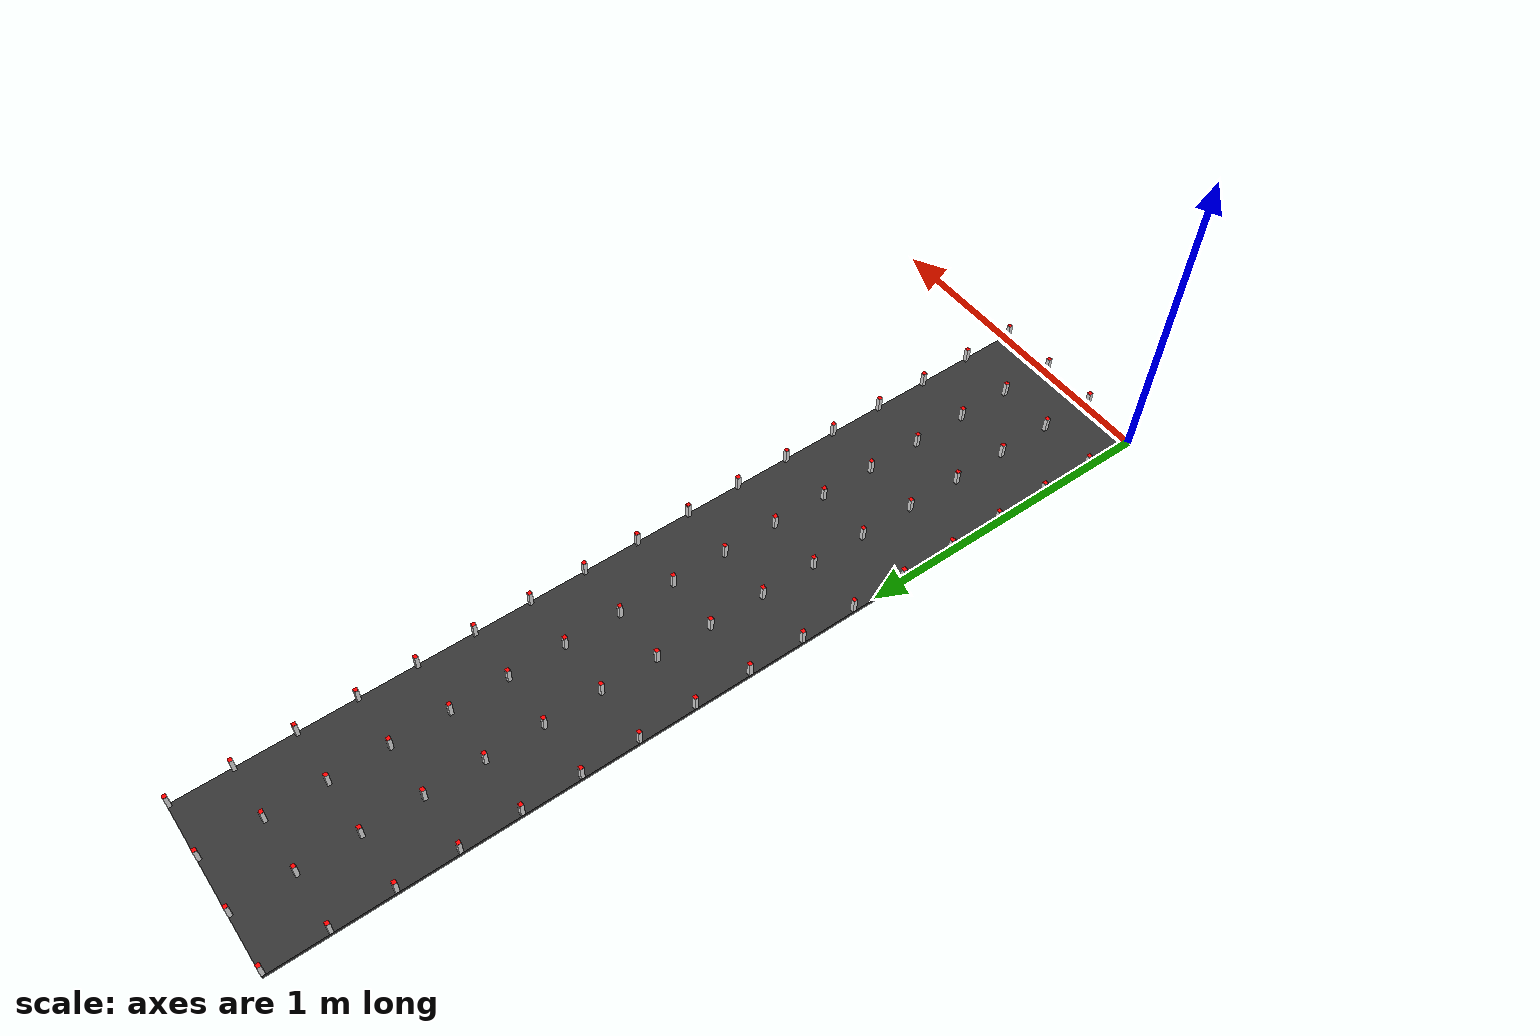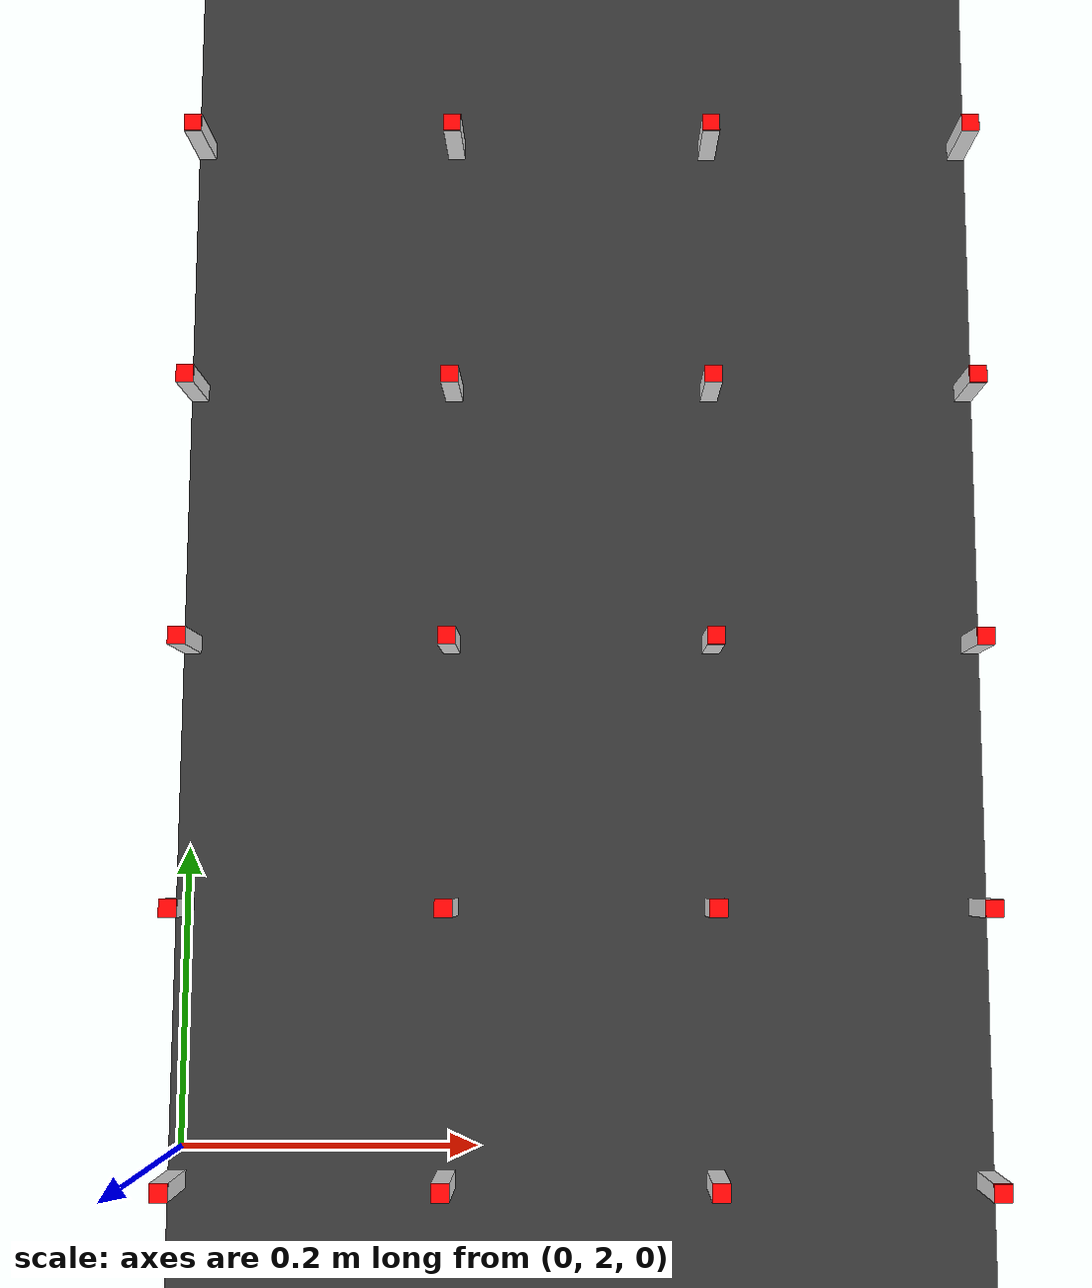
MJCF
<mujoco model="maze">
    <worldbody>
        <!--ベース板-->
        <body name="base_plate" pos="0.27 1.44 0.006">
        <geom type="box" mass="0.1" size="0.276 1.446 0.006" rgba="0.2 0.2 0.2 1" friction="0.0 0.0 0.0"/>
        </body>

        <!-- Column 1-->
        <body pos="0.0 0.0 0.037">
            <body pos="0 0 -0.0005">
                <geom type="box" mass="0.01" size="0.006 0.006 0.0245" rgba="1 1 1 1"/>
            </body>
            <!--柱上赤蓋-->
            <body pos="0 0 0.0245">
                <geom type="box" mass="0.01" size="0.006 0.006 0.0005" rgba="1 0 0 1"/>
            </body>
        </body>

        <!-- Column 2-->
        <body pos="0.18 0.0 0.037">
            <body pos="0 0 -0.0005">
                <geom type="box" mass="0.01" size="0.006 0.006 0.0245" rgba="1 1 1 1"/>
            </body>
            <!--柱上赤蓋-->
            <body pos="0 0 0.0245">
                <geom type="box" mass="0.01" size="0.006 0.006 0.0005" rgba="1 0 0 1"/>
            </body>
        </body>

        <!-- Column 3-->
        <body pos="0.36 0.0 0.037">
            <body pos="0 0 -0.0005">
                <geom type="box" mass="0.01" size="0.006 0.006 0.0245" rgba="1 1 1 1"/>
            </body>
            <!--柱上赤蓋-->
            <body pos="0 0 0.0245">
                <geom type="box" mass="0.01" size="0.006 0.006 0.0005" rgba="1 0 0 1"/>
            </body>
        </body>

        <!-- Column 4-->
        <body pos="0.54 0.0 0.037">
            <body pos="0 0 -0.0005">
                <geom type="box" mass="0.01" size="0.006 0.006 0.0245" rgba="1 1 1 1"/>
            </body>
            <!--柱上赤蓋-->
            <body pos="0 0 0.0245">
                <geom type="box" mass="0.01" size="0.006 0.006 0.0005" rgba="1 0 0 1"/>
            </body>
        </body>

        <!-- Column 5-->
        <body pos="0.0 0.18 0.037">
            <body pos="0 0 -0.0005">
                <geom type="box" mass="0.01" size="0.006 0.006 0.0245" rgba="1 1 1 1"/>
            </body>
            <!--柱上赤蓋-->
            <body pos="0 0 0.0245">
                <geom type="box" mass="0.01" size="0.006 0.006 0.0005" rgba="1 0 0 1"/>
            </body>
        </body>

        <!-- Column 6-->
        <body pos="0.18 0.18 0.037">
            <body pos="0 0 -0.0005">
                <geom type="box" mass="0.01" size="0.006 0.006 0.0245" rgba="1 1 1 1"/>
            </body>
            <!--柱上赤蓋-->
            <body pos="0 0 0.0245">
                <geom type="box" mass="0.01" size="0.006 0.006 0.0005" rgba="1 0 0 1"/>
            </body>
        </body>

        <!-- Column 7-->
        <body pos="0.36 0.18 0.037">
            <body pos="0 0 -0.0005">
                <geom type="box" mass="0.01" size="0.006 0.006 0.0245" rgba="1 1 1 1"/>
            </body>
            <!--柱上赤蓋-->
            <body pos="0 0 0.0245">
                <geom type="box" mass="0.01" size="0.006 0.006 0.0005" rgba="1 0 0 1"/>
            </body>
        </body>

        <!-- Column 8-->
        <body pos="0.54 0.18 0.037">
            <body pos="0 0 -0.0005">
                <geom type="box" mass="0.01" size="0.006 0.006 0.0245" rgba="1 1 1 1"/>
            </body>
            <!--柱上赤蓋-->
            <body pos="0 0 0.0245">
                <geom type="box" mass="0.01" size="0.006 0.006 0.0005" rgba="1 0 0 1"/>
            </body>
        </body>

        <!-- Column 9-->
        <body pos="0.0 0.36 0.037">
            <body pos="0 0 -0.0005">
                <geom type="box" mass="0.01" size="0.006 0.006 0.0245" rgba="1 1 1 1"/>
            </body>
            <!--柱上赤蓋-->
            <body pos="0 0 0.0245">
                <geom type="box" mass="0.01" size="0.006 0.006 0.0005" rgba="1 0 0 1"/>
            </body>
        </body>

        <!-- Column 10-->
        <body pos="0.18 0.36 0.037">
            <body pos="0 0 -0.0005">
                <geom type="box" mass="0.01" size="0.006 0.006 0.0245" rgba="1 1 1 1"/>
            </body>
            <!--柱上赤蓋-->
            <body pos="0 0 0.0245">
                <geom type="box" mass="0.01" size="0.006 0.006 0.0005" rgba="1 0 0 1"/>
            </body>
        </body>

        <!-- Column 11-->
        <body pos="0.36 0.36 0.037">
            <body pos="0 0 -0.0005">
                <geom type="box" mass="0.01" size="0.006 0.006 0.0245" rgba="1 1 1 1"/>
            </body>
            <!--柱上赤蓋-->
            <body pos="0 0 0.0245">
                <geom type="box" mass="0.01" size="0.006 0.006 0.0005" rgba="1 0 0 1"/>
            </body>
        </body>

        <!-- Column 12-->
        <body pos="0.54 0.36 0.037">
            <body pos="0 0 -0.0005">
                <geom type="box" mass="0.01" size="0.006 0.006 0.0245" rgba="1 1 1 1"/>
            </body>
            <!--柱上赤蓋-->
            <body pos="0 0 0.0245">
                <geom type="box" mass="0.01" size="0.006 0.006 0.0005" rgba="1 0 0 1"/>
            </body>
        </body>

        <!-- Column 13-->
        <body pos="0.0 0.54 0.037">
            <body pos="0 0 -0.0005">
                <geom type="box" mass="0.01" size="0.006 0.006 0.0245" rgba="1 1 1 1"/>
            </body>
            <!--柱上赤蓋-->
            <body pos="0 0 0.0245">
                <geom type="box" mass="0.01" size="0.006 0.006 0.0005" rgba="1 0 0 1"/>
            </body>
        </body>

        <!-- Column 14-->
        <body pos="0.18 0.54 0.037">
            <body pos="0 0 -0.0005">
                <geom type="box" mass="0.01" size="0.006 0.006 0.0245" rgba="1 1 1 1"/>
            </body>
            <!--柱上赤蓋-->
            <body pos="0 0 0.0245">
                <geom type="box" mass="0.01" size="0.006 0.006 0.0005" rgba="1 0 0 1"/>
            </body>
        </body>

        <!-- Column 15-->
        <body pos="0.36 0.54 0.037">
            <body pos="0 0 -0.0005">
                <geom type="box" mass="0.01" size="0.006 0.006 0.0245" rgba="1 1 1 1"/>
            </body>
            <!--柱上赤蓋-->
            <body pos="0 0 0.0245">
                <geom type="box" mass="0.01" size="0.006 0.006 0.0005" rgba="1 0 0 1"/>
            </body>
        </body>

        <!-- Column 16-->
        <body pos="0.54 0.54 0.037">
            <body pos="0 0 -0.0005">
                <geom type="box" mass="0.01" size="0.006 0.006 0.0245" rgba="1 1 1 1"/>
            </body>
            <!--柱上赤蓋-->
            <body pos="0 0 0.0245">
                <geom type="box" mass="0.01" size="0.006 0.006 0.0005" rgba="1 0 0 1"/>
            </body>
        </body>

        <!-- Column 17-->
        <body pos="0.0 0.72 0.037">
            <body pos="0 0 -0.0005">
                <geom type="box" mass="0.01" size="0.006 0.006 0.0245" rgba="1 1 1 1"/>
            </body>
            <!--柱上赤蓋-->
            <body pos="0 0 0.0245">
                <geom type="box" mass="0.01" size="0.006 0.006 0.0005" rgba="1 0 0 1"/>
            </body>
        </body>

        <!-- Column 18-->
        <body pos="0.18 0.72 0.037">
            <body pos="0 0 -0.0005">
                <geom type="box" mass="0.01" size="0.006 0.006 0.0245" rgba="1 1 1 1"/>
            </body>
            <!--柱上赤蓋-->
            <body pos="0 0 0.0245">
                <geom type="box" mass="0.01" size="0.006 0.006 0.0005" rgba="1 0 0 1"/>
            </body>
        </body>

        <!-- Column 19-->
        <body pos="0.36 0.72 0.037">
            <body pos="0 0 -0.0005">
                <geom type="box" mass="0.01" size="0.006 0.006 0.0245" rgba="1 1 1 1"/>
            </body>
            <!--柱上赤蓋-->
            <body pos="0 0 0.0245">
                <geom type="box" mass="0.01" size="0.006 0.006 0.0005" rgba="1 0 0 1"/>
            </body>
        </body>

        <!-- Column 20-->
        <body pos="0.54 0.72 0.037">
            <body pos="0 0 -0.0005">
                <geom type="box" mass="0.01" size="0.006 0.006 0.0245" rgba="1 1 1 1"/>
            </body>
            <!--柱上赤蓋-->
            <body pos="0 0 0.0245">
                <geom type="box" mass="0.01" size="0.006 0.006 0.0005" rgba="1 0 0 1"/>
            </body>
        </body>

        <!-- Column 21-->
        <body pos="0.0 0.8999999999999999 0.037">
            <body pos="0 0 -0.0005">
                <geom type="box" mass="0.01" size="0.006 0.006 0.0245" rgba="1 1 1 1"/>
            </body>
            <!--柱上赤蓋-->
            <body pos="0 0 0.0245">
                <geom type="box" mass="0.01" size="0.006 0.006 0.0005" rgba="1 0 0 1"/>
            </body>
        </body>

        <!-- Column 22-->
        <body pos="0.18 0.8999999999999999 0.037">
            <body pos="0 0 -0.0005">
                <geom type="box" mass="0.01" size="0.006 0.006 0.0245" rgba="1 1 1 1"/>
            </body>
            <!--柱上赤蓋-->
            <body pos="0 0 0.0245">
                <geom type="box" mass="0.01" size="0.006 0.006 0.0005" rgba="1 0 0 1"/>
            </body>
        </body>

        <!-- Column 23-->
        <body pos="0.36 0.8999999999999999 0.037">
            <body pos="0 0 -0.0005">
                <geom type="box" mass="0.01" size="0.006 0.006 0.0245" rgba="1 1 1 1"/>
            </body>
            <!--柱上赤蓋-->
            <body pos="0 0 0.0245">
                <geom type="box" mass="0.01" size="0.006 0.006 0.0005" rgba="1 0 0 1"/>
            </body>
        </body>

        <!-- Column 24-->
        <body pos="0.54 0.8999999999999999 0.037">
            <body pos="0 0 -0.0005">
                <geom type="box" mass="0.01" size="0.006 0.006 0.0245" rgba="1 1 1 1"/>
            </body>
            <!--柱上赤蓋-->
            <body pos="0 0 0.0245">
                <geom type="box" mass="0.01" size="0.006 0.006 0.0005" rgba="1 0 0 1"/>
            </body>
        </body>

        <!-- Column 25-->
        <body pos="0.0 1.08 0.037">
            <body pos="0 0 -0.0005">
                <geom type="box" mass="0.01" size="0.006 0.006 0.0245" rgba="1 1 1 1"/>
            </body>
            <!--柱上赤蓋-->
            <body pos="0 0 0.0245">
                <geom type="box" mass="0.01" size="0.006 0.006 0.0005" rgba="1 0 0 1"/>
            </body>
        </body>

        <!-- Column 26-->
        <body pos="0.18 1.08 0.037">
            <body pos="0 0 -0.0005">
                <geom type="box" mass="0.01" size="0.006 0.006 0.0245" rgba="1 1 1 1"/>
            </body>
            <!--柱上赤蓋-->
            <body pos="0 0 0.0245">
                <geom type="box" mass="0.01" size="0.006 0.006 0.0005" rgba="1 0 0 1"/>
            </body>
        </body>

        <!-- Column 27-->
        <body pos="0.36 1.08 0.037">
            <body pos="0 0 -0.0005">
                <geom type="box" mass="0.01" size="0.006 0.006 0.0245" rgba="1 1 1 1"/>
            </body>
            <!--柱上赤蓋-->
            <body pos="0 0 0.0245">
                <geom type="box" mass="0.01" size="0.006 0.006 0.0005" rgba="1 0 0 1"/>
            </body>
        </body>

        <!-- Column 28-->
        <body pos="0.54 1.08 0.037">
            <body pos="0 0 -0.0005">
                <geom type="box" mass="0.01" size="0.006 0.006 0.0245" rgba="1 1 1 1"/>
            </body>
            <!--柱上赤蓋-->
            <body pos="0 0 0.0245">
                <geom type="box" mass="0.01" size="0.006 0.006 0.0005" rgba="1 0 0 1"/>
            </body>
        </body>

        <!-- Column 29-->
        <body pos="0.0 1.26 0.037">
            <body pos="0 0 -0.0005">
                <geom type="box" mass="0.01" size="0.006 0.006 0.0245" rgba="1 1 1 1"/>
            </body>
            <!--柱上赤蓋-->
            <body pos="0 0 0.0245">
                <geom type="box" mass="0.01" size="0.006 0.006 0.0005" rgba="1 0 0 1"/>
            </body>
        </body>

        <!-- Column 30-->
        <body pos="0.18 1.26 0.037">
            <body pos="0 0 -0.0005">
                <geom type="box" mass="0.01" size="0.006 0.006 0.0245" rgba="1 1 1 1"/>
            </body>
            <!--柱上赤蓋-->
            <body pos="0 0 0.0245">
                <geom type="box" mass="0.01" size="0.006 0.006 0.0005" rgba="1 0 0 1"/>
            </body>
        </body>

        <!-- Column 31-->
        <body pos="0.36 1.26 0.037">
            <body pos="0 0 -0.0005">
                <geom type="box" mass="0.01" size="0.006 0.006 0.0245" rgba="1 1 1 1"/>
            </body>
            <!--柱上赤蓋-->
            <body pos="0 0 0.0245">
                <geom type="box" mass="0.01" size="0.006 0.006 0.0005" rgba="1 0 0 1"/>
            </body>
        </body>

        <!-- Column 32-->
        <body pos="0.54 1.26 0.037">
            <body pos="0 0 -0.0005">
                <geom type="box" mass="0.01" size="0.006 0.006 0.0245" rgba="1 1 1 1"/>
            </body>
            <!--柱上赤蓋-->
            <body pos="0 0 0.0245">
                <geom type="box" mass="0.01" size="0.006 0.006 0.0005" rgba="1 0 0 1"/>
            </body>
        </body>

        <!-- Column 33-->
        <body pos="0.0 1.44 0.037">
            <body pos="0 0 -0.0005">
                <geom type="box" mass="0.01" size="0.006 0.006 0.0245" rgba="1 1 1 1"/>
            </body>
            <!--柱上赤蓋-->
            <body pos="0 0 0.0245">
                <geom type="box" mass="0.01" size="0.006 0.006 0.0005" rgba="1 0 0 1"/>
            </body>
        </body>

        <!-- Column 34-->
        <body pos="0.18 1.44 0.037">
            <body pos="0 0 -0.0005">
                <geom type="box" mass="0.01" size="0.006 0.006 0.0245" rgba="1 1 1 1"/>
            </body>
            <!--柱上赤蓋-->
            <body pos="0 0 0.0245">
                <geom type="box" mass="0.01" size="0.006 0.006 0.0005" rgba="1 0 0 1"/>
            </body>
        </body>

        <!-- Column 35-->
        <body pos="0.36 1.44 0.037">
            <body pos="0 0 -0.0005">
                <geom type="box" mass="0.01" size="0.006 0.006 0.0245" rgba="1 1 1 1"/>
            </body>
            <!--柱上赤蓋-->
            <body pos="0 0 0.0245">
                <geom type="box" mass="0.01" size="0.006 0.006 0.0005" rgba="1 0 0 1"/>
            </body>
        </body>

        <!-- Column 36-->
        <body pos="0.54 1.44 0.037">
            <body pos="0 0 -0.0005">
                <geom type="box" mass="0.01" size="0.006 0.006 0.0245" rgba="1 1 1 1"/>
            </body>
            <!--柱上赤蓋-->
            <body pos="0 0 0.0245">
                <geom type="box" mass="0.01" size="0.006 0.006 0.0005" rgba="1 0 0 1"/>
            </body>
        </body>

        <!-- Column 37-->
        <body pos="0.0 1.6199999999999999 0.037">
            <body pos="0 0 -0.0005">
                <geom type="box" mass="0.01" size="0.006 0.006 0.0245" rgba="1 1 1 1"/>
            </body>
            <!--柱上赤蓋-->
            <body pos="0 0 0.0245">
                <geom type="box" mass="0.01" size="0.006 0.006 0.0005" rgba="1 0 0 1"/>
            </body>
        </body>

        <!-- Column 38-->
        <body pos="0.18 1.6199999999999999 0.037">
            <body pos="0 0 -0.0005">
                <geom type="box" mass="0.01" size="0.006 0.006 0.0245" rgba="1 1 1 1"/>
            </body>
            <!--柱上赤蓋-->
            <body pos="0 0 0.0245">
                <geom type="box" mass="0.01" size="0.006 0.006 0.0005" rgba="1 0 0 1"/>
            </body>
        </body>

        <!-- Column 39-->
        <body pos="0.36 1.6199999999999999 0.037">
            <body pos="0 0 -0.0005">
                <geom type="box" mass="0.01" size="0.006 0.006 0.0245" rgba="1 1 1 1"/>
            </body>
            <!--柱上赤蓋-->
            <body pos="0 0 0.0245">
                <geom type="box" mass="0.01" size="0.006 0.006 0.0005" rgba="1 0 0 1"/>
            </body>
        </body>

        <!-- Column 40-->
        <body pos="0.54 1.6199999999999999 0.037">
            <body pos="0 0 -0.0005">
                <geom type="box" mass="0.01" size="0.006 0.006 0.0245" rgba="1 1 1 1"/>
            </body>
            <!--柱上赤蓋-->
            <body pos="0 0 0.0245">
                <geom type="box" mass="0.01" size="0.006 0.006 0.0005" rgba="1 0 0 1"/>
            </body>
        </body>

        <!-- Column 41-->
        <body pos="0.0 1.7999999999999998 0.037">
            <body pos="0 0 -0.0005">
                <geom type="box" mass="0.01" size="0.006 0.006 0.0245" rgba="1 1 1 1"/>
            </body>
            <!--柱上赤蓋-->
            <body pos="0 0 0.0245">
                <geom type="box" mass="0.01" size="0.006 0.006 0.0005" rgba="1 0 0 1"/>
            </body>
        </body>

        <!-- Column 42-->
        <body pos="0.18 1.7999999999999998 0.037">
            <body pos="0 0 -0.0005">
                <geom type="box" mass="0.01" size="0.006 0.006 0.0245" rgba="1 1 1 1"/>
            </body>
            <!--柱上赤蓋-->
            <body pos="0 0 0.0245">
                <geom type="box" mass="0.01" size="0.006 0.006 0.0005" rgba="1 0 0 1"/>
            </body>
        </body>

        <!-- Column 43-->
        <body pos="0.36 1.7999999999999998 0.037">
            <body pos="0 0 -0.0005">
                <geom type="box" mass="0.01" size="0.006 0.006 0.0245" rgba="1 1 1 1"/>
            </body>
            <!--柱上赤蓋-->
            <body pos="0 0 0.0245">
                <geom type="box" mass="0.01" size="0.006 0.006 0.0005" rgba="1 0 0 1"/>
            </body>
        </body>

        <!-- Column 44-->
        <body pos="0.54 1.7999999999999998 0.037">
            <body pos="0 0 -0.0005">
                <geom type="box" mass="0.01" size="0.006 0.006 0.0245" rgba="1 1 1 1"/>
            </body>
            <!--柱上赤蓋-->
            <body pos="0 0 0.0245">
                <geom type="box" mass="0.01" size="0.006 0.006 0.0005" rgba="1 0 0 1"/>
            </body>
        </body>

        <!-- Column 45-->
        <body pos="0.0 1.98 0.037">
            <body pos="0 0 -0.0005">
                <geom type="box" mass="0.01" size="0.006 0.006 0.0245" rgba="1 1 1 1"/>
            </body>
            <!--柱上赤蓋-->
            <body pos="0 0 0.0245">
                <geom type="box" mass="0.01" size="0.006 0.006 0.0005" rgba="1 0 0 1"/>
            </body>
        </body>

        <!-- Column 46-->
        <body pos="0.18 1.98 0.037">
            <body pos="0 0 -0.0005">
                <geom type="box" mass="0.01" size="0.006 0.006 0.0245" rgba="1 1 1 1"/>
            </body>
            <!--柱上赤蓋-->
            <body pos="0 0 0.0245">
                <geom type="box" mass="0.01" size="0.006 0.006 0.0005" rgba="1 0 0 1"/>
            </body>
        </body>

        <!-- Column 47-->
        <body pos="0.36 1.98 0.037">
            <body pos="0 0 -0.0005">
                <geom type="box" mass="0.01" size="0.006 0.006 0.0245" rgba="1 1 1 1"/>
            </body>
            <!--柱上赤蓋-->
            <body pos="0 0 0.0245">
                <geom type="box" mass="0.01" size="0.006 0.006 0.0005" rgba="1 0 0 1"/>
            </body>
        </body>

        <!-- Column 48-->
        <body pos="0.54 1.98 0.037">
            <body pos="0 0 -0.0005">
                <geom type="box" mass="0.01" size="0.006 0.006 0.0245" rgba="1 1 1 1"/>
            </body>
            <!--柱上赤蓋-->
            <body pos="0 0 0.0245">
                <geom type="box" mass="0.01" size="0.006 0.006 0.0005" rgba="1 0 0 1"/>
            </body>
        </body>

        <!-- Column 49-->
        <body pos="0.0 2.16 0.037">
            <body pos="0 0 -0.0005">
                <geom type="box" mass="0.01" size="0.006 0.006 0.0245" rgba="1 1 1 1"/>
            </body>
            <!--柱上赤蓋-->
            <body pos="0 0 0.0245">
                <geom type="box" mass="0.01" size="0.006 0.006 0.0005" rgba="1 0 0 1"/>
            </body>
        </body>

        <!-- Column 50-->
        <body pos="0.18 2.16 0.037">
            <body pos="0 0 -0.0005">
                <geom type="box" mass="0.01" size="0.006 0.006 0.0245" rgba="1 1 1 1"/>
            </body>
            <!--柱上赤蓋-->
            <body pos="0 0 0.0245">
                <geom type="box" mass="0.01" size="0.006 0.006 0.0005" rgba="1 0 0 1"/>
            </body>
        </body>

        <!-- Column 51-->
        <body pos="0.36 2.16 0.037">
            <body pos="0 0 -0.0005">
                <geom type="box" mass="0.01" size="0.006 0.006 0.0245" rgba="1 1 1 1"/>
            </body>
            <!--柱上赤蓋-->
            <body pos="0 0 0.0245">
                <geom type="box" mass="0.01" size="0.006 0.006 0.0005" rgba="1 0 0 1"/>
            </body>
        </body>

        <!-- Column 52-->
        <body pos="0.54 2.16 0.037">
            <body pos="0 0 -0.0005">
                <geom type="box" mass="0.01" size="0.006 0.006 0.0245" rgba="1 1 1 1"/>
            </body>
            <!--柱上赤蓋-->
            <body pos="0 0 0.0245">
                <geom type="box" mass="0.01" size="0.006 0.006 0.0005" rgba="1 0 0 1"/>
            </body>
        </body>

        <!-- Column 53-->
        <body pos="0.0 2.34 0.037">
            <body pos="0 0 -0.0005">
                <geom type="box" mass="0.01" size="0.006 0.006 0.0245" rgba="1 1 1 1"/>
            </body>
            <!--柱上赤蓋-->
            <body pos="0 0 0.0245">
                <geom type="box" mass="0.01" size="0.006 0.006 0.0005" rgba="1 0 0 1"/>
            </body>
        </body>

        <!-- Column 54-->
        <body pos="0.18 2.34 0.037">
            <body pos="0 0 -0.0005">
                <geom type="box" mass="0.01" size="0.006 0.006 0.0245" rgba="1 1 1 1"/>
            </body>
            <!--柱上赤蓋-->
            <body pos="0 0 0.0245">
                <geom type="box" mass="0.01" size="0.006 0.006 0.0005" rgba="1 0 0 1"/>
            </body>
        </body>

        <!-- Column 55-->
        <body pos="0.36 2.34 0.037">
            <body pos="0 0 -0.0005">
                <geom type="box" mass="0.01" size="0.006 0.006 0.0245" rgba="1 1 1 1"/>
            </body>
            <!--柱上赤蓋-->
            <body pos="0 0 0.0245">
                <geom type="box" mass="0.01" size="0.006 0.006 0.0005" rgba="1 0 0 1"/>
            </body>
        </body>

        <!-- Column 56-->
        <body pos="0.54 2.34 0.037">
            <body pos="0 0 -0.0005">
                <geom type="box" mass="0.01" size="0.006 0.006 0.0245" rgba="1 1 1 1"/>
            </body>
            <!--柱上赤蓋-->
            <body pos="0 0 0.0245">
                <geom type="box" mass="0.01" size="0.006 0.006 0.0005" rgba="1 0 0 1"/>
            </body>
        </body>

        <!-- Column 57-->
        <body pos="0.0 2.52 0.037">
            <body pos="0 0 -0.0005">
                <geom type="box" mass="0.01" size="0.006 0.006 0.0245" rgba="1 1 1 1"/>
            </body>
            <!--柱上赤蓋-->
            <body pos="0 0 0.0245">
                <geom type="box" mass="0.01" size="0.006 0.006 0.0005" rgba="1 0 0 1"/>
            </body>
        </body>

        <!-- Column 58-->
        <body pos="0.18 2.52 0.037">
            <body pos="0 0 -0.0005">
                <geom type="box" mass="0.01" size="0.006 0.006 0.0245" rgba="1 1 1 1"/>
            </body>
            <!--柱上赤蓋-->
            <body pos="0 0 0.0245">
                <geom type="box" mass="0.01" size="0.006 0.006 0.0005" rgba="1 0 0 1"/>
            </body>
        </body>

        <!-- Column 59-->
        <body pos="0.36 2.52 0.037">
            <body pos="0 0 -0.0005">
                <geom type="box" mass="0.01" size="0.006 0.006 0.0245" rgba="1 1 1 1"/>
            </body>
            <!--柱上赤蓋-->
            <body pos="0 0 0.0245">
                <geom type="box" mass="0.01" size="0.006 0.006 0.0005" rgba="1 0 0 1"/>
            </body>
        </body>

        <!-- Column 60-->
        <body pos="0.54 2.52 0.037">
            <body pos="0 0 -0.0005">
                <geom type="box" mass="0.01" size="0.006 0.006 0.0245" rgba="1 1 1 1"/>
            </body>
            <!--柱上赤蓋-->
            <body pos="0 0 0.0245">
                <geom type="box" mass="0.01" size="0.006 0.006 0.0005" rgba="1 0 0 1"/>
            </body>
        </body>

        <!-- Column 61-->
        <body pos="0.0 2.6999999999999997 0.037">
            <body pos="0 0 -0.0005">
                <geom type="box" mass="0.01" size="0.006 0.006 0.0245" rgba="1 1 1 1"/>
            </body>
            <!--柱上赤蓋-->
            <body pos="0 0 0.0245">
                <geom type="box" mass="0.01" size="0.006 0.006 0.0005" rgba="1 0 0 1"/>
            </body>
        </body>

        <!-- Column 62-->
        <body pos="0.18 2.6999999999999997 0.037">
            <body pos="0 0 -0.0005">
                <geom type="box" mass="0.01" size="0.006 0.006 0.0245" rgba="1 1 1 1"/>
            </body>
            <!--柱上赤蓋-->
            <body pos="0 0 0.0245">
                <geom type="box" mass="0.01" size="0.006 0.006 0.0005" rgba="1 0 0 1"/>
            </body>
        </body>

        <!-- Column 63-->
        <body pos="0.36 2.6999999999999997 0.037">
            <body pos="0 0 -0.0005">
                <geom type="box" mass="0.01" size="0.006 0.006 0.0245" rgba="1 1 1 1"/>
            </body>
            <!--柱上赤蓋-->
            <body pos="0 0 0.0245">
                <geom type="box" mass="0.01" size="0.006 0.006 0.0005" rgba="1 0 0 1"/>
            </body>
        </body>

        <!-- Column 64-->
        <body pos="0.54 2.6999999999999997 0.037">
            <body pos="0 0 -0.0005">
                <geom type="box" mass="0.01" size="0.006 0.006 0.0245" rgba="1 1 1 1"/>
            </body>
            <!--柱上赤蓋-->
            <body pos="0 0 0.0245">
                <geom type="box" mass="0.01" size="0.006 0.006 0.0005" rgba="1 0 0 1"/>
            </body>
        </body>

        <!-- Column 65-->
        <body pos="0.0 2.88 0.037">
            <body pos="0 0 -0.0005">
                <geom type="box" mass="0.01" size="0.006 0.006 0.0245" rgba="1 1 1 1"/>
            </body>
            <!--柱上赤蓋-->
            <body pos="0 0 0.0245">
                <geom type="box" mass="0.01" size="0.006 0.006 0.0005" rgba="1 0 0 1"/>
            </body>
        </body>

        <!-- Column 66-->
        <body pos="0.18 2.88 0.037">
            <body pos="0 0 -0.0005">
                <geom type="box" mass="0.01" size="0.006 0.006 0.0245" rgba="1 1 1 1"/>
            </body>
            <!--柱上赤蓋-->
            <body pos="0 0 0.0245">
                <geom type="box" mass="0.01" size="0.006 0.006 0.0005" rgba="1 0 0 1"/>
            </body>
        </body>

        <!-- Column 67-->
        <body pos="0.36 2.88 0.037">
            <body pos="0 0 -0.0005">
                <geom type="box" mass="0.01" size="0.006 0.006 0.0245" rgba="1 1 1 1"/>
            </body>
            <!--柱上赤蓋-->
            <body pos="0 0 0.0245">
                <geom type="box" mass="0.01" size="0.006 0.006 0.0005" rgba="1 0 0 1"/>
            </body>
        </body>

        <!-- Column 68-->
        <body pos="0.54 2.88 0.037">
            <body pos="0 0 -0.0005">
                <geom type="box" mass="0.01" size="0.006 0.006 0.0245" rgba="1 1 1 1"/>
            </body>
            <!--柱上赤蓋-->
            <body pos="0 0 0.0245">
                <geom type="box" mass="0.01" size="0.006 0.006 0.0005" rgba="1 0 0 1"/>
            </body>
        </body>
    </worldbody>
</mujoco>
